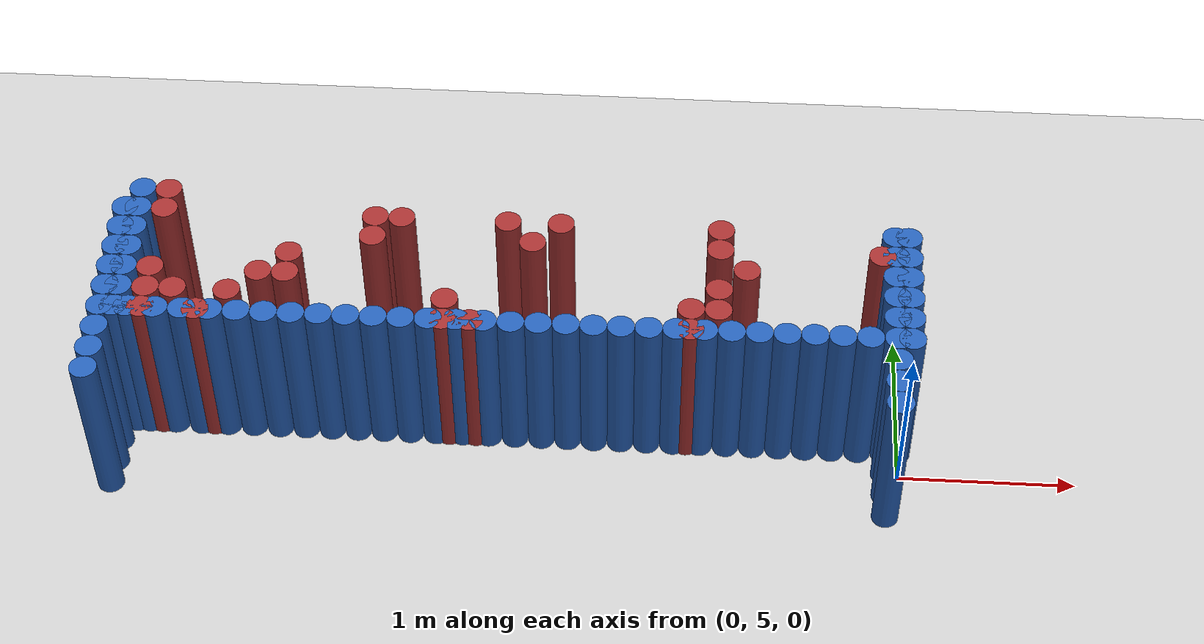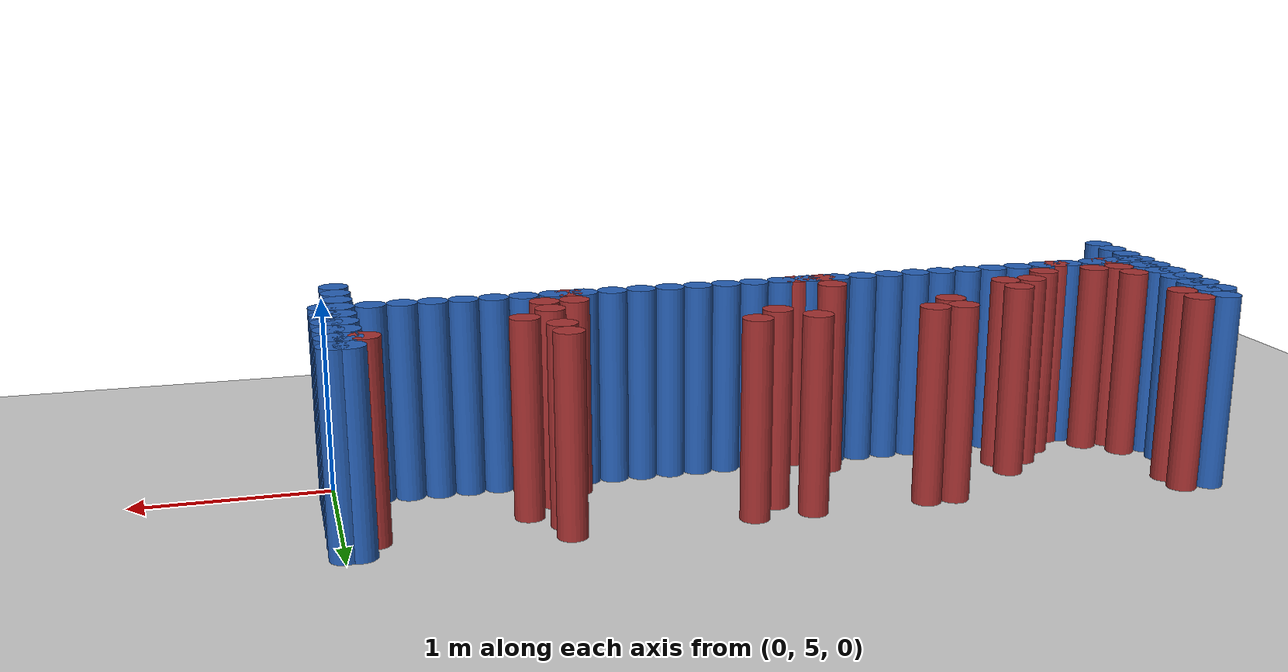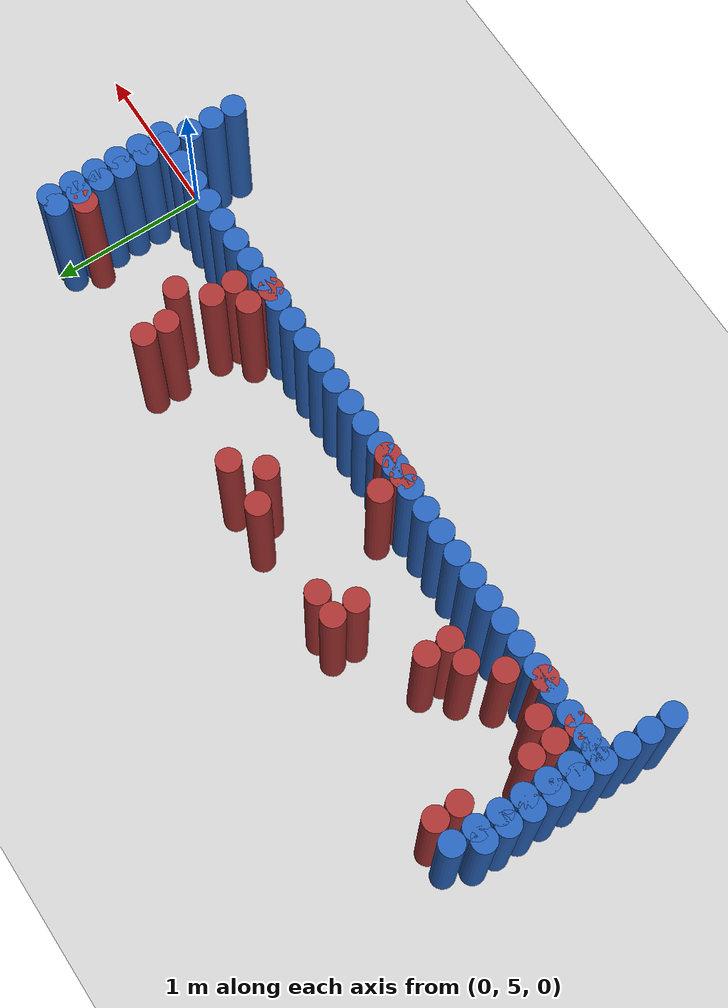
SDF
<sdf version="1.6">
 <world name="barn_world">
  <model name="ground_plane">
   <static>1</static>
   <link name="link">
    <collision name="collision">
     <geometry><plane><normal>0 0 1</normal><size>100 100</size></plane></geometry>
    </collision>
    <visual name="visual">
     <geometry><plane><normal>0 0 1</normal><size>100 100</size></plane></geometry>
     <material>
      <script><uri>file://media/materials/scripts/gazebo.material</uri><name>Gazebo/Grey</name></script>
     </material>
    </visual>
   </link>
  </model>
  <model name="unit_cylinder_90">
   <static>1</static>
   <pose>-0.0750 4.7250 0.5 0 0 0</pose>
   <link name="link">
    <collision name="collision">
     <geometry><cylinder><radius>0.075</radius><length>1</length></cylinder></geometry>
    </collision>
    <visual name="visual">
     <geometry><cylinder><radius>0.075</radius><length>1</length></cylinder></geometry>
     <material><ambient>0.152 0.379 0.72 1</ambient><diffuse>0.152 0.379 0.72 1</diffuse></material>
    </visual>
   </link>
  </model>
  <model name="unit_cylinder_91">
   <static>1</static>
   <pose>-4.4250 4.7250 0.5 0 0 0</pose>
   <link name="link">
    <collision name="collision">
     <geometry><cylinder><radius>0.075</radius><length>1</length></cylinder></geometry>
    </collision>
    <visual name="visual">
     <geometry><cylinder><radius>0.075</radius><length>1</length></cylinder></geometry>
     <material><ambient>0.152 0.379 0.72 1</ambient><diffuse>0.152 0.379 0.72 1</diffuse></material>
    </visual>
   </link>
  </model>
  <model name="unit_cylinder_92">
   <static>1</static>
   <pose>-0.0750 4.8750 0.5 0 0 0</pose>
   <link name="link">
    <collision name="collision">
     <geometry><cylinder><radius>0.075</radius><length>1</length></cylinder></geometry>
    </collision>
    <visual name="visual">
     <geometry><cylinder><radius>0.075</radius><length>1</length></cylinder></geometry>
     <material><ambient>0.152 0.379 0.72 1</ambient><diffuse>0.152 0.379 0.72 1</diffuse></material>
    </visual>
   </link>
  </model>
  <model name="unit_cylinder_93">
   <static>1</static>
   <pose>-4.4250 4.8750 0.5 0 0 0</pose>
   <link name="link">
    <collision name="collision">
     <geometry><cylinder><radius>0.075</radius><length>1</length></cylinder></geometry>
    </collision>
    <visual name="visual">
     <geometry><cylinder><radius>0.075</radius><length>1</length></cylinder></geometry>
     <material><ambient>0.152 0.379 0.72 1</ambient><diffuse>0.152 0.379 0.72 1</diffuse></material>
    </visual>
   </link>
  </model>
  <model name="unit_cylinder_94">
   <static>1</static>
   <pose>-0.0750 5.0250 0.5 0 0 0</pose>
   <link name="link">
    <collision name="collision">
     <geometry><cylinder><radius>0.075</radius><length>1</length></cylinder></geometry>
    </collision>
    <visual name="visual">
     <geometry><cylinder><radius>0.075</radius><length>1</length></cylinder></geometry>
     <material><ambient>0.152 0.379 0.72 1</ambient><diffuse>0.152 0.379 0.72 1</diffuse></material>
    </visual>
   </link>
  </model>
  <model name="unit_cylinder_95">
   <static>1</static>
   <pose>-4.4250 5.0250 0.5 0 0 0</pose>
   <link name="link">
    <collision name="collision">
     <geometry><cylinder><radius>0.075</radius><length>1</length></cylinder></geometry>
    </collision>
    <visual name="visual">
     <geometry><cylinder><radius>0.075</radius><length>1</length></cylinder></geometry>
     <material><ambient>0.152 0.379 0.72 1</ambient><diffuse>0.152 0.379 0.72 1</diffuse></material>
    </visual>
   </link>
  </model>
  <model name="unit_cylinder_96">
   <static>1</static>
   <pose>-0.0750 5.1750 0.5 0 0 0</pose>
   <link name="link">
    <collision name="collision">
     <geometry><cylinder><radius>0.075</radius><length>1</length></cylinder></geometry>
    </collision>
    <visual name="visual">
     <geometry><cylinder><radius>0.075</radius><length>1</length></cylinder></geometry>
     <material><ambient>0.152 0.379 0.72 1</ambient><diffuse>0.152 0.379 0.72 1</diffuse></material>
    </visual>
   </link>
  </model>
  <model name="unit_cylinder_97">
   <static>1</static>
   <pose>-0.2250 5.1750 0.5 0 0 0</pose>
   <link name="link">
    <collision name="collision">
     <geometry><cylinder><radius>0.075</radius><length>1</length></cylinder></geometry>
    </collision>
    <visual name="visual">
     <geometry><cylinder><radius>0.075</radius><length>1</length></cylinder></geometry>
     <material><ambient>0.152 0.379 0.72 1</ambient><diffuse>0.152 0.379 0.72 1</diffuse></material>
    </visual>
   </link>
  </model>
  <model name="unit_cylinder_98">
   <static>1</static>
   <pose>-0.3750 5.1750 0.5 0 0 0</pose>
   <link name="link">
    <collision name="collision">
     <geometry><cylinder><radius>0.075</radius><length>1</length></cylinder></geometry>
    </collision>
    <visual name="visual">
     <geometry><cylinder><radius>0.075</radius><length>1</length></cylinder></geometry>
     <material><ambient>0.152 0.379 0.72 1</ambient><diffuse>0.152 0.379 0.72 1</diffuse></material>
    </visual>
   </link>
  </model>
  <model name="unit_cylinder_99">
   <static>1</static>
   <pose>-0.5250 5.1750 0.5 0 0 0</pose>
   <link name="link">
    <collision name="collision">
     <geometry><cylinder><radius>0.075</radius><length>1</length></cylinder></geometry>
    </collision>
    <visual name="visual">
     <geometry><cylinder><radius>0.075</radius><length>1</length></cylinder></geometry>
     <material><ambient>0.152 0.379 0.72 1</ambient><diffuse>0.152 0.379 0.72 1</diffuse></material>
    </visual>
   </link>
  </model>
  <model name="unit_cylinder_100">
   <static>1</static>
   <pose>-0.6750 5.1750 0.5 0 0 0</pose>
   <link name="link">
    <collision name="collision">
     <geometry><cylinder><radius>0.075</radius><length>1</length></cylinder></geometry>
    </collision>
    <visual name="visual">
     <geometry><cylinder><radius>0.075</radius><length>1</length></cylinder></geometry>
     <material><ambient>0.152 0.379 0.72 1</ambient><diffuse>0.152 0.379 0.72 1</diffuse></material>
    </visual>
   </link>
  </model>
  <model name="unit_cylinder_101">
   <static>1</static>
   <pose>-0.8250 5.1750 0.5 0 0 0</pose>
   <link name="link">
    <collision name="collision">
     <geometry><cylinder><radius>0.075</radius><length>1</length></cylinder></geometry>
    </collision>
    <visual name="visual">
     <geometry><cylinder><radius>0.075</radius><length>1</length></cylinder></geometry>
     <material><ambient>0.152 0.379 0.72 1</ambient><diffuse>0.152 0.379 0.72 1</diffuse></material>
    </visual>
   </link>
  </model>
  <model name="unit_cylinder_102">
   <static>1</static>
   <pose>-0.9750 5.1750 0.5 0 0 0</pose>
   <link name="link">
    <collision name="collision">
     <geometry><cylinder><radius>0.075</radius><length>1</length></cylinder></geometry>
    </collision>
    <visual name="visual">
     <geometry><cylinder><radius>0.075</radius><length>1</length></cylinder></geometry>
     <material><ambient>0.152 0.379 0.72 1</ambient><diffuse>0.152 0.379 0.72 1</diffuse></material>
    </visual>
   </link>
  </model>
  <model name="unit_cylinder_103">
   <static>1</static>
   <pose>-1.1250 5.1750 0.5 0 0 0</pose>
   <link name="link">
    <collision name="collision">
     <geometry><cylinder><radius>0.075</radius><length>1</length></cylinder></geometry>
    </collision>
    <visual name="visual">
     <geometry><cylinder><radius>0.075</radius><length>1</length></cylinder></geometry>
     <material><ambient>0.152 0.379 0.72 1</ambient><diffuse>0.152 0.379 0.72 1</diffuse></material>
    </visual>
   </link>
  </model>
  <model name="unit_cylinder_104">
   <static>1</static>
   <pose>-1.2750 5.1750 0.5 0 0 0</pose>
   <link name="link">
    <collision name="collision">
     <geometry><cylinder><radius>0.075</radius><length>1</length></cylinder></geometry>
    </collision>
    <visual name="visual">
     <geometry><cylinder><radius>0.075</radius><length>1</length></cylinder></geometry>
     <material><ambient>0.152 0.379 0.72 1</ambient><diffuse>0.152 0.379 0.72 1</diffuse></material>
    </visual>
   </link>
  </model>
  <model name="unit_cylinder_105">
   <static>1</static>
   <pose>-1.4250 5.1750 0.5 0 0 0</pose>
   <link name="link">
    <collision name="collision">
     <geometry><cylinder><radius>0.075</radius><length>1</length></cylinder></geometry>
    </collision>
    <visual name="visual">
     <geometry><cylinder><radius>0.075</radius><length>1</length></cylinder></geometry>
     <material><ambient>0.152 0.379 0.72 1</ambient><diffuse>0.152 0.379 0.72 1</diffuse></material>
    </visual>
   </link>
  </model>
  <model name="unit_cylinder_106">
   <static>1</static>
   <pose>-1.5750 5.1750 0.5 0 0 0</pose>
   <link name="link">
    <collision name="collision">
     <geometry><cylinder><radius>0.075</radius><length>1</length></cylinder></geometry>
    </collision>
    <visual name="visual">
     <geometry><cylinder><radius>0.075</radius><length>1</length></cylinder></geometry>
     <material><ambient>0.152 0.379 0.72 1</ambient><diffuse>0.152 0.379 0.72 1</diffuse></material>
    </visual>
   </link>
  </model>
  <model name="unit_cylinder_107">
   <static>1</static>
   <pose>-1.7250 5.1750 0.5 0 0 0</pose>
   <link name="link">
    <collision name="collision">
     <geometry><cylinder><radius>0.075</radius><length>1</length></cylinder></geometry>
    </collision>
    <visual name="visual">
     <geometry><cylinder><radius>0.075</radius><length>1</length></cylinder></geometry>
     <material><ambient>0.152 0.379 0.72 1</ambient><diffuse>0.152 0.379 0.72 1</diffuse></material>
    </visual>
   </link>
  </model>
  <model name="unit_cylinder_108">
   <static>1</static>
   <pose>-1.8750 5.1750 0.5 0 0 0</pose>
   <link name="link">
    <collision name="collision">
     <geometry><cylinder><radius>0.075</radius><length>1</length></cylinder></geometry>
    </collision>
    <visual name="visual">
     <geometry><cylinder><radius>0.075</radius><length>1</length></cylinder></geometry>
     <material><ambient>0.152 0.379 0.72 1</ambient><diffuse>0.152 0.379 0.72 1</diffuse></material>
    </visual>
   </link>
  </model>
  <model name="unit_cylinder_109">
   <static>1</static>
   <pose>-2.0250 5.1750 0.5 0 0 0</pose>
   <link name="link">
    <collision name="collision">
     <geometry><cylinder><radius>0.075</radius><length>1</length></cylinder></geometry>
    </collision>
    <visual name="visual">
     <geometry><cylinder><radius>0.075</radius><length>1</length></cylinder></geometry>
     <material><ambient>0.152 0.379 0.72 1</ambient><diffuse>0.152 0.379 0.72 1</diffuse></material>
    </visual>
   </link>
  </model>
  <model name="unit_cylinder_110">
   <static>1</static>
   <pose>-2.1750 5.1750 0.5 0 0 0</pose>
   <link name="link">
    <collision name="collision">
     <geometry><cylinder><radius>0.075</radius><length>1</length></cylinder></geometry>
    </collision>
    <visual name="visual">
     <geometry><cylinder><radius>0.075</radius><length>1</length></cylinder></geometry>
     <material><ambient>0.152 0.379 0.72 1</ambient><diffuse>0.152 0.379 0.72 1</diffuse></material>
    </visual>
   </link>
  </model>
  <model name="unit_cylinder_111">
   <static>1</static>
   <pose>-2.3250 5.1750 0.5 0 0 0</pose>
   <link name="link">
    <collision name="collision">
     <geometry><cylinder><radius>0.075</radius><length>1</length></cylinder></geometry>
    </collision>
    <visual name="visual">
     <geometry><cylinder><radius>0.075</radius><length>1</length></cylinder></geometry>
     <material><ambient>0.152 0.379 0.72 1</ambient><diffuse>0.152 0.379 0.72 1</diffuse></material>
    </visual>
   </link>
  </model>
  <model name="unit_cylinder_112">
   <static>1</static>
   <pose>-2.4750 5.1750 0.5 0 0 0</pose>
   <link name="link">
    <collision name="collision">
     <geometry><cylinder><radius>0.075</radius><length>1</length></cylinder></geometry>
    </collision>
    <visual name="visual">
     <geometry><cylinder><radius>0.075</radius><length>1</length></cylinder></geometry>
     <material><ambient>0.152 0.379 0.72 1</ambient><diffuse>0.152 0.379 0.72 1</diffuse></material>
    </visual>
   </link>
  </model>
  <model name="unit_cylinder_113">
   <static>1</static>
   <pose>-2.6250 5.1750 0.5 0 0 0</pose>
   <link name="link">
    <collision name="collision">
     <geometry><cylinder><radius>0.075</radius><length>1</length></cylinder></geometry>
    </collision>
    <visual name="visual">
     <geometry><cylinder><radius>0.075</radius><length>1</length></cylinder></geometry>
     <material><ambient>0.152 0.379 0.72 1</ambient><diffuse>0.152 0.379 0.72 1</diffuse></material>
    </visual>
   </link>
  </model>
  <model name="unit_cylinder_114">
   <static>1</static>
   <pose>-2.7750 5.1750 0.5 0 0 0</pose>
   <link name="link">
    <collision name="collision">
     <geometry><cylinder><radius>0.075</radius><length>1</length></cylinder></geometry>
    </collision>
    <visual name="visual">
     <geometry><cylinder><radius>0.075</radius><length>1</length></cylinder></geometry>
     <material><ambient>0.152 0.379 0.72 1</ambient><diffuse>0.152 0.379 0.72 1</diffuse></material>
    </visual>
   </link>
  </model>
  <model name="unit_cylinder_115">
   <static>1</static>
   <pose>-2.9250 5.1750 0.5 0 0 0</pose>
   <link name="link">
    <collision name="collision">
     <geometry><cylinder><radius>0.075</radius><length>1</length></cylinder></geometry>
    </collision>
    <visual name="visual">
     <geometry><cylinder><radius>0.075</radius><length>1</length></cylinder></geometry>
     <material><ambient>0.152 0.379 0.72 1</ambient><diffuse>0.152 0.379 0.72 1</diffuse></material>
    </visual>
   </link>
  </model>
  <model name="unit_cylinder_116">
   <static>1</static>
   <pose>-3.0750 5.1750 0.5 0 0 0</pose>
   <link name="link">
    <collision name="collision">
     <geometry><cylinder><radius>0.075</radius><length>1</length></cylinder></geometry>
    </collision>
    <visual name="visual">
     <geometry><cylinder><radius>0.075</radius><length>1</length></cylinder></geometry>
     <material><ambient>0.152 0.379 0.72 1</ambient><diffuse>0.152 0.379 0.72 1</diffuse></material>
    </visual>
   </link>
  </model>
  <model name="unit_cylinder_117">
   <static>1</static>
   <pose>-3.2250 5.1750 0.5 0 0 0</pose>
   <link name="link">
    <collision name="collision">
     <geometry><cylinder><radius>0.075</radius><length>1</length></cylinder></geometry>
    </collision>
    <visual name="visual">
     <geometry><cylinder><radius>0.075</radius><length>1</length></cylinder></geometry>
     <material><ambient>0.152 0.379 0.72 1</ambient><diffuse>0.152 0.379 0.72 1</diffuse></material>
    </visual>
   </link>
  </model>
  <model name="unit_cylinder_118">
   <static>1</static>
   <pose>-3.3750 5.1750 0.5 0 0 0</pose>
   <link name="link">
    <collision name="collision">
     <geometry><cylinder><radius>0.075</radius><length>1</length></cylinder></geometry>
    </collision>
    <visual name="visual">
     <geometry><cylinder><radius>0.075</radius><length>1</length></cylinder></geometry>
     <material><ambient>0.152 0.379 0.72 1</ambient><diffuse>0.152 0.379 0.72 1</diffuse></material>
    </visual>
   </link>
  </model>
  <model name="unit_cylinder_119">
   <static>1</static>
   <pose>-3.5250 5.1750 0.5 0 0 0</pose>
   <link name="link">
    <collision name="collision">
     <geometry><cylinder><radius>0.075</radius><length>1</length></cylinder></geometry>
    </collision>
    <visual name="visual">
     <geometry><cylinder><radius>0.075</radius><length>1</length></cylinder></geometry>
     <material><ambient>0.152 0.379 0.72 1</ambient><diffuse>0.152 0.379 0.72 1</diffuse></material>
    </visual>
   </link>
  </model>
  <model name="unit_cylinder_120">
   <static>1</static>
   <pose>-3.6750 5.1750 0.5 0 0 0</pose>
   <link name="link">
    <collision name="collision">
     <geometry><cylinder><radius>0.075</radius><length>1</length></cylinder></geometry>
    </collision>
    <visual name="visual">
     <geometry><cylinder><radius>0.075</radius><length>1</length></cylinder></geometry>
     <material><ambient>0.152 0.379 0.72 1</ambient><diffuse>0.152 0.379 0.72 1</diffuse></material>
    </visual>
   </link>
  </model>
  <model name="unit_cylinder_121">
   <static>1</static>
   <pose>-3.8250 5.1750 0.5 0 0 0</pose>
   <link name="link">
    <collision name="collision">
     <geometry><cylinder><radius>0.075</radius><length>1</length></cylinder></geometry>
    </collision>
    <visual name="visual">
     <geometry><cylinder><radius>0.075</radius><length>1</length></cylinder></geometry>
     <material><ambient>0.152 0.379 0.72 1</ambient><diffuse>0.152 0.379 0.72 1</diffuse></material>
    </visual>
   </link>
  </model>
  <model name="unit_cylinder_122">
   <static>1</static>
   <pose>-3.9750 5.1750 0.5 0 0 0</pose>
   <link name="link">
    <collision name="collision">
     <geometry><cylinder><radius>0.075</radius><length>1</length></cylinder></geometry>
    </collision>
    <visual name="visual">
     <geometry><cylinder><radius>0.075</radius><length>1</length></cylinder></geometry>
     <material><ambient>0.152 0.379 0.72 1</ambient><diffuse>0.152 0.379 0.72 1</diffuse></material>
    </visual>
   </link>
  </model>
  <model name="unit_cylinder_123">
   <static>1</static>
   <pose>-4.1250 5.1750 0.5 0 0 0</pose>
   <link name="link">
    <collision name="collision">
     <geometry><cylinder><radius>0.075</radius><length>1</length></cylinder></geometry>
    </collision>
    <visual name="visual">
     <geometry><cylinder><radius>0.075</radius><length>1</length></cylinder></geometry>
     <material><ambient>0.152 0.379 0.72 1</ambient><diffuse>0.152 0.379 0.72 1</diffuse></material>
    </visual>
   </link>
  </model>
  <model name="unit_cylinder_124">
   <static>1</static>
   <pose>-4.2750 5.1750 0.5 0 0 0</pose>
   <link name="link">
    <collision name="collision">
     <geometry><cylinder><radius>0.075</radius><length>1</length></cylinder></geometry>
    </collision>
    <visual name="visual">
     <geometry><cylinder><radius>0.075</radius><length>1</length></cylinder></geometry>
     <material><ambient>0.152 0.379 0.72 1</ambient><diffuse>0.152 0.379 0.72 1</diffuse></material>
    </visual>
   </link>
  </model>
  <model name="unit_cylinder_125">
   <static>1</static>
   <pose>-4.4250 5.1750 0.5 0 0 0</pose>
   <link name="link">
    <collision name="collision">
     <geometry><cylinder><radius>0.075</radius><length>1</length></cylinder></geometry>
    </collision>
    <visual name="visual">
     <geometry><cylinder><radius>0.075</radius><length>1</length></cylinder></geometry>
     <material><ambient>0.152 0.379 0.72 1</ambient><diffuse>0.152 0.379 0.72 1</diffuse></material>
    </visual>
   </link>
  </model>
  <model name="unit_cylinder_126">
   <static>1</static>
   <pose>-4.3500 5.1750 0.5 0 0 0</pose>
   <link name="link">
    <collision name="collision">
     <geometry><cylinder><radius>0.075</radius><length>1</length></cylinder></geometry>
    </collision>
    <visual name="visual">
     <geometry><cylinder><radius>0.075</radius><length>1</length></cylinder></geometry>
     <material><ambient>0.152 0.379 0.72 1</ambient><diffuse>0.152 0.379 0.72 1</diffuse></material>
    </visual>
   </link>
  </model>
  <model name="unit_cylinder_127">
   <static>1</static>
   <pose>-4.3500 5.3250 0.5 0 0 0</pose>
   <link name="link">
    <collision name="collision">
     <geometry><cylinder><radius>0.075</radius><length>1</length></cylinder></geometry>
    </collision>
    <visual name="visual">
     <geometry><cylinder><radius>0.075</radius><length>1</length></cylinder></geometry>
     <material><ambient>0.152 0.379 0.72 1</ambient><diffuse>0.152 0.379 0.72 1</diffuse></material>
    </visual>
   </link>
  </model>
  <model name="unit_cylinder_128">
   <static>1</static>
   <pose>-4.3500 5.4750 0.5 0 0 0</pose>
   <link name="link">
    <collision name="collision">
     <geometry><cylinder><radius>0.075</radius><length>1</length></cylinder></geometry>
    </collision>
    <visual name="visual">
     <geometry><cylinder><radius>0.075</radius><length>1</length></cylinder></geometry>
     <material><ambient>0.152 0.379 0.72 1</ambient><diffuse>0.152 0.379 0.72 1</diffuse></material>
    </visual>
   </link>
  </model>
  <model name="unit_cylinder_129">
   <static>1</static>
   <pose>-4.3500 5.6250 0.5 0 0 0</pose>
   <link name="link">
    <collision name="collision">
     <geometry><cylinder><radius>0.075</radius><length>1</length></cylinder></geometry>
    </collision>
    <visual name="visual">
     <geometry><cylinder><radius>0.075</radius><length>1</length></cylinder></geometry>
     <material><ambient>0.152 0.379 0.72 1</ambient><diffuse>0.152 0.379 0.72 1</diffuse></material>
    </visual>
   </link>
  </model>
  <model name="unit_cylinder_130">
   <static>1</static>
   <pose>-4.3500 5.7750 0.5 0 0 0</pose>
   <link name="link">
    <collision name="collision">
     <geometry><cylinder><radius>0.075</radius><length>1</length></cylinder></geometry>
    </collision>
    <visual name="visual">
     <geometry><cylinder><radius>0.075</radius><length>1</length></cylinder></geometry>
     <material><ambient>0.152 0.379 0.72 1</ambient><diffuse>0.152 0.379 0.72 1</diffuse></material>
    </visual>
   </link>
  </model>
  <model name="unit_cylinder_131">
   <static>1</static>
   <pose>-4.3500 5.9250 0.5 0 0 0</pose>
   <link name="link">
    <collision name="collision">
     <geometry><cylinder><radius>0.075</radius><length>1</length></cylinder></geometry>
    </collision>
    <visual name="visual">
     <geometry><cylinder><radius>0.075</radius><length>1</length></cylinder></geometry>
     <material><ambient>0.152 0.379 0.72 1</ambient><diffuse>0.152 0.379 0.72 1</diffuse></material>
    </visual>
   </link>
  </model>
  <model name="unit_cylinder_132">
   <static>1</static>
   <pose>-4.3500 6.0750 0.5 0 0 0</pose>
   <link name="link">
    <collision name="collision">
     <geometry><cylinder><radius>0.075</radius><length>1</length></cylinder></geometry>
    </collision>
    <visual name="visual">
     <geometry><cylinder><radius>0.075</radius><length>1</length></cylinder></geometry>
     <material><ambient>0.152 0.379 0.72 1</ambient><diffuse>0.152 0.379 0.72 1</diffuse></material>
    </visual>
   </link>
  </model>
  <model name="unit_cylinder_156">
   <static>1</static>
   <pose>-4.2000 5.1750 0.5 0 0 0</pose>
   <link name="link">
    <collision name="collision">
     <geometry><cylinder><radius>0.075</radius><length>1</length></cylinder></geometry>
    </collision>
    <visual name="visual">
     <geometry><cylinder><radius>0.075</radius><length>1</length></cylinder></geometry>
     <material><ambient>0.648 0.192 0.192 1</ambient><diffuse>0.648 0.192 0.192 1</diffuse></material>
    </visual>
   </link>
  </model>
  <model name="unit_cylinder_157">
   <static>1</static>
   <pose>-4.2000 5.3250 0.5 0 0 0</pose>
   <link name="link">
    <collision name="collision">
     <geometry><cylinder><radius>0.075</radius><length>1</length></cylinder></geometry>
    </collision>
    <visual name="visual">
     <geometry><cylinder><radius>0.075</radius><length>1</length></cylinder></geometry>
     <material><ambient>0.648 0.192 0.192 1</ambient><diffuse>0.648 0.192 0.192 1</diffuse></material>
    </visual>
   </link>
  </model>
  <model name="unit_cylinder_158">
   <static>1</static>
   <pose>-4.2000 5.4750 0.5 0 0 0</pose>
   <link name="link">
    <collision name="collision">
     <geometry><cylinder><radius>0.075</radius><length>1</length></cylinder></geometry>
    </collision>
    <visual name="visual">
     <geometry><cylinder><radius>0.075</radius><length>1</length></cylinder></geometry>
     <material><ambient>0.648 0.192 0.192 1</ambient><diffuse>0.648 0.192 0.192 1</diffuse></material>
    </visual>
   </link>
  </model>
  <model name="unit_cylinder_159">
   <static>1</static>
   <pose>-4.2000 5.9250 0.5 0 0 0</pose>
   <link name="link">
    <collision name="collision">
     <geometry><cylinder><radius>0.075</radius><length>1</length></cylinder></geometry>
    </collision>
    <visual name="visual">
     <geometry><cylinder><radius>0.075</radius><length>1</length></cylinder></geometry>
     <material><ambient>0.648 0.192 0.192 1</ambient><diffuse>0.648 0.192 0.192 1</diffuse></material>
    </visual>
   </link>
  </model>
  <model name="unit_cylinder_160">
   <static>1</static>
   <pose>-4.2000 6.0750 0.5 0 0 0</pose>
   <link name="link">
    <collision name="collision">
     <geometry><cylinder><radius>0.075</radius><length>1</length></cylinder></geometry>
    </collision>
    <visual name="visual">
     <geometry><cylinder><radius>0.075</radius><length>1</length></cylinder></geometry>
     <material><ambient>0.648 0.192 0.192 1</ambient><diffuse>0.648 0.192 0.192 1</diffuse></material>
    </visual>
   </link>
  </model>
  <model name="unit_cylinder_176">
   <static>1</static>
   <pose>-4.0500 5.3250 0.5 0 0 0</pose>
   <link name="link">
    <collision name="collision">
     <geometry><cylinder><radius>0.075</radius><length>1</length></cylinder></geometry>
    </collision>
    <visual name="visual">
     <geometry><cylinder><radius>0.075</radius><length>1</length></cylinder></geometry>
     <material><ambient>0.648 0.192 0.192 1</ambient><diffuse>0.648 0.192 0.192 1</diffuse></material>
    </visual>
   </link>
  </model>
  <model name="unit_cylinder_183">
   <static>1</static>
   <pose>-3.9000 5.1750 0.5 0 0 0</pose>
   <link name="link">
    <collision name="collision">
     <geometry><cylinder><radius>0.075</radius><length>1</length></cylinder></geometry>
    </collision>
    <visual name="visual">
     <geometry><cylinder><radius>0.075</radius><length>1</length></cylinder></geometry>
     <material><ambient>0.648 0.192 0.192 1</ambient><diffuse>0.648 0.192 0.192 1</diffuse></material>
    </visual>
   </link>
  </model>
  <model name="unit_cylinder_186">
   <static>1</static>
   <pose>-3.7500 5.3250 0.5 0 0 0</pose>
   <link name="link">
    <collision name="collision">
     <geometry><cylinder><radius>0.075</radius><length>1</length></cylinder></geometry>
    </collision>
    <visual name="visual">
     <geometry><cylinder><radius>0.075</radius><length>1</length></cylinder></geometry>
     <material><ambient>0.648 0.192 0.192 1</ambient><diffuse>0.648 0.192 0.192 1</diffuse></material>
    </visual>
   </link>
  </model>
  <model name="unit_cylinder_187">
   <static>1</static>
   <pose>-3.6000 5.4750 0.5 0 0 0</pose>
   <link name="link">
    <collision name="collision">
     <geometry><cylinder><radius>0.075</radius><length>1</length></cylinder></geometry>
    </collision>
    <visual name="visual">
     <geometry><cylinder><radius>0.075</radius><length>1</length></cylinder></geometry>
     <material><ambient>0.648 0.192 0.192 1</ambient><diffuse>0.648 0.192 0.192 1</diffuse></material>
    </visual>
   </link>
  </model>
  <model name="unit_cylinder_188">
   <static>1</static>
   <pose>-3.4500 5.4750 0.5 0 0 0</pose>
   <link name="link">
    <collision name="collision">
     <geometry><cylinder><radius>0.075</radius><length>1</length></cylinder></geometry>
    </collision>
    <visual name="visual">
     <geometry><cylinder><radius>0.075</radius><length>1</length></cylinder></geometry>
     <material><ambient>0.648 0.192 0.192 1</ambient><diffuse>0.648 0.192 0.192 1</diffuse></material>
    </visual>
   </link>
  </model>
  <model name="unit_cylinder_189">
   <static>1</static>
   <pose>-3.4500 5.6250 0.5 0 0 0</pose>
   <link name="link">
    <collision name="collision">
     <geometry><cylinder><radius>0.075</radius><length>1</length></cylinder></geometry>
    </collision>
    <visual name="visual">
     <geometry><cylinder><radius>0.075</radius><length>1</length></cylinder></geometry>
     <material><ambient>0.648 0.192 0.192 1</ambient><diffuse>0.648 0.192 0.192 1</diffuse></material>
    </visual>
   </link>
  </model>
  <model name="unit_cylinder_191">
   <static>1</static>
   <pose>-3.0000 5.7750 0.5 0 0 0</pose>
   <link name="link">
    <collision name="collision">
     <geometry><cylinder><radius>0.075</radius><length>1</length></cylinder></geometry>
    </collision>
    <visual name="visual">
     <geometry><cylinder><radius>0.075</radius><length>1</length></cylinder></geometry>
     <material><ambient>0.648 0.192 0.192 1</ambient><diffuse>0.648 0.192 0.192 1</diffuse></material>
    </visual>
   </link>
  </model>
  <model name="unit_cylinder_192">
   <static>1</static>
   <pose>-3.0000 5.9250 0.5 0 0 0</pose>
   <link name="link">
    <collision name="collision">
     <geometry><cylinder><radius>0.075</radius><length>1</length></cylinder></geometry>
    </collision>
    <visual name="visual">
     <geometry><cylinder><radius>0.075</radius><length>1</length></cylinder></geometry>
     <material><ambient>0.648 0.192 0.192 1</ambient><diffuse>0.648 0.192 0.192 1</diffuse></material>
    </visual>
   </link>
  </model>
  <model name="unit_cylinder_196">
   <static>1</static>
   <pose>-2.8500 5.9250 0.5 0 0 0</pose>
   <link name="link">
    <collision name="collision">
     <geometry><cylinder><radius>0.075</radius><length>1</length></cylinder></geometry>
    </collision>
    <visual name="visual">
     <geometry><cylinder><radius>0.075</radius><length>1</length></cylinder></geometry>
     <material><ambient>0.648 0.192 0.192 1</ambient><diffuse>0.648 0.192 0.192 1</diffuse></material>
    </visual>
   </link>
  </model>
  <model name="unit_cylinder_207">
   <static>1</static>
   <pose>-2.5500 5.1750 0.5 0 0 0</pose>
   <link name="link">
    <collision name="collision">
     <geometry><cylinder><radius>0.075</radius><length>1</length></cylinder></geometry>
    </collision>
    <visual name="visual">
     <geometry><cylinder><radius>0.075</radius><length>1</length></cylinder></geometry>
     <material><ambient>0.648 0.192 0.192 1</ambient><diffuse>0.648 0.192 0.192 1</diffuse></material>
    </visual>
   </link>
  </model>
  <model name="unit_cylinder_208">
   <static>1</static>
   <pose>-2.5500 5.3250 0.5 0 0 0</pose>
   <link name="link">
    <collision name="collision">
     <geometry><cylinder><radius>0.075</radius><length>1</length></cylinder></geometry>
    </collision>
    <visual name="visual">
     <geometry><cylinder><radius>0.075</radius><length>1</length></cylinder></geometry>
     <material><ambient>0.648 0.192 0.192 1</ambient><diffuse>0.648 0.192 0.192 1</diffuse></material>
    </visual>
   </link>
  </model>
  <model name="unit_cylinder_212">
   <static>1</static>
   <pose>-2.4000 5.1750 0.5 0 0 0</pose>
   <link name="link">
    <collision name="collision">
     <geometry><cylinder><radius>0.075</radius><length>1</length></cylinder></geometry>
    </collision>
    <visual name="visual">
     <geometry><cylinder><radius>0.075</radius><length>1</length></cylinder></geometry>
     <material><ambient>0.648 0.192 0.192 1</ambient><diffuse>0.648 0.192 0.192 1</diffuse></material>
    </visual>
   </link>
  </model>
  <model name="unit_cylinder_215">
   <static>1</static>
   <pose>-2.2500 5.9250 0.5 0 0 0</pose>
   <link name="link">
    <collision name="collision">
     <geometry><cylinder><radius>0.075</radius><length>1</length></cylinder></geometry>
    </collision>
    <visual name="visual">
     <geometry><cylinder><radius>0.075</radius><length>1</length></cylinder></geometry>
     <material><ambient>0.648 0.192 0.192 1</ambient><diffuse>0.648 0.192 0.192 1</diffuse></material>
    </visual>
   </link>
  </model>
  <model name="unit_cylinder_216">
   <static>1</static>
   <pose>-2.1000 5.7750 0.5 0 0 0</pose>
   <link name="link">
    <collision name="collision">
     <geometry><cylinder><radius>0.075</radius><length>1</length></cylinder></geometry>
    </collision>
    <visual name="visual">
     <geometry><cylinder><radius>0.075</radius><length>1</length></cylinder></geometry>
     <material><ambient>0.648 0.192 0.192 1</ambient><diffuse>0.648 0.192 0.192 1</diffuse></material>
    </visual>
   </link>
  </model>
  <model name="unit_cylinder_218">
   <static>1</static>
   <pose>-1.9500 5.9250 0.5 0 0 0</pose>
   <link name="link">
    <collision name="collision">
     <geometry><cylinder><radius>0.075</radius><length>1</length></cylinder></geometry>
    </collision>
    <visual name="visual">
     <geometry><cylinder><radius>0.075</radius><length>1</length></cylinder></geometry>
     <material><ambient>0.648 0.192 0.192 1</ambient><diffuse>0.648 0.192 0.192 1</diffuse></material>
    </visual>
   </link>
  </model>
  <model name="unit_cylinder_222">
   <static>1</static>
   <pose>-1.2000 5.1750 0.5 0 0 0</pose>
   <link name="link">
    <collision name="collision">
     <geometry><cylinder><radius>0.075</radius><length>1</length></cylinder></geometry>
    </collision>
    <visual name="visual">
     <geometry><cylinder><radius>0.075</radius><length>1</length></cylinder></geometry>
     <material><ambient>0.648 0.192 0.192 1</ambient><diffuse>0.648 0.192 0.192 1</diffuse></material>
    </visual>
   </link>
  </model>
  <model name="unit_cylinder_223">
   <static>1</static>
   <pose>-1.2000 5.3250 0.5 0 0 0</pose>
   <link name="link">
    <collision name="collision">
     <geometry><cylinder><radius>0.075</radius><length>1</length></cylinder></geometry>
    </collision>
    <visual name="visual">
     <geometry><cylinder><radius>0.075</radius><length>1</length></cylinder></geometry>
     <material><ambient>0.648 0.192 0.192 1</ambient><diffuse>0.648 0.192 0.192 1</diffuse></material>
    </visual>
   </link>
  </model>
  <model name="unit_cylinder_224">
   <static>1</static>
   <pose>-1.0500 5.3250 0.5 0 0 0</pose>
   <link name="link">
    <collision name="collision">
     <geometry><cylinder><radius>0.075</radius><length>1</length></cylinder></geometry>
    </collision>
    <visual name="visual">
     <geometry><cylinder><radius>0.075</radius><length>1</length></cylinder></geometry>
     <material><ambient>0.648 0.192 0.192 1</ambient><diffuse>0.648 0.192 0.192 1</diffuse></material>
    </visual>
   </link>
  </model>
  <model name="unit_cylinder_225">
   <static>1</static>
   <pose>-1.0500 5.4750 0.5 0 0 0</pose>
   <link name="link">
    <collision name="collision">
     <geometry><cylinder><radius>0.075</radius><length>1</length></cylinder></geometry>
    </collision>
    <visual name="visual">
     <geometry><cylinder><radius>0.075</radius><length>1</length></cylinder></geometry>
     <material><ambient>0.648 0.192 0.192 1</ambient><diffuse>0.648 0.192 0.192 1</diffuse></material>
    </visual>
   </link>
  </model>
  <model name="unit_cylinder_226">
   <static>1</static>
   <pose>-1.0500 5.7750 0.5 0 0 0</pose>
   <link name="link">
    <collision name="collision">
     <geometry><cylinder><radius>0.075</radius><length>1</length></cylinder></geometry>
    </collision>
    <visual name="visual">
     <geometry><cylinder><radius>0.075</radius><length>1</length></cylinder></geometry>
     <material><ambient>0.648 0.192 0.192 1</ambient><diffuse>0.648 0.192 0.192 1</diffuse></material>
    </visual>
   </link>
  </model>
  <model name="unit_cylinder_227">
   <static>1</static>
   <pose>-1.0500 5.9250 0.5 0 0 0</pose>
   <link name="link">
    <collision name="collision">
     <geometry><cylinder><radius>0.075</radius><length>1</length></cylinder></geometry>
    </collision>
    <visual name="visual">
     <geometry><cylinder><radius>0.075</radius><length>1</length></cylinder></geometry>
     <material><ambient>0.648 0.192 0.192 1</ambient><diffuse>0.648 0.192 0.192 1</diffuse></material>
    </visual>
   </link>
  </model>
  <model name="unit_cylinder_228">
   <static>1</static>
   <pose>-0.9000 5.6250 0.5 0 0 0</pose>
   <link name="link">
    <collision name="collision">
     <geometry><cylinder><radius>0.075</radius><length>1</length></cylinder></geometry>
    </collision>
    <visual name="visual">
     <geometry><cylinder><radius>0.075</radius><length>1</length></cylinder></geometry>
     <material><ambient>0.648 0.192 0.192 1</ambient><diffuse>0.648 0.192 0.192 1</diffuse></material>
    </visual>
   </link>
  </model>
  <model name="unit_cylinder_236">
   <static>1</static>
   <pose>-0.1500 5.7750 0.5 0 0 0</pose>
   <link name="link">
    <collision name="collision">
     <geometry><cylinder><radius>0.075</radius><length>1</length></cylinder></geometry>
    </collision>
    <visual name="visual">
     <geometry><cylinder><radius>0.075</radius><length>1</length></cylinder></geometry>
     <material><ambient>0.648 0.192 0.192 1</ambient><diffuse>0.648 0.192 0.192 1</diffuse></material>
    </visual>
   </link>
  </model>
  <model name="unit_cylinder_239">
   <static>1</static>
   <pose>0.0000 5.1750 0.5 0 0 0</pose>
   <link name="link">
    <collision name="collision">
     <geometry><cylinder><radius>0.075</radius><length>1</length></cylinder></geometry>
    </collision>
    <visual name="visual">
     <geometry><cylinder><radius>0.075</radius><length>1</length></cylinder></geometry>
     <material><ambient>0.152 0.379 0.72 1</ambient><diffuse>0.152 0.379 0.72 1</diffuse></material>
    </visual>
   </link>
  </model>
  <model name="unit_cylinder_240">
   <static>1</static>
   <pose>0.0000 5.3250 0.5 0 0 0</pose>
   <link name="link">
    <collision name="collision">
     <geometry><cylinder><radius>0.075</radius><length>1</length></cylinder></geometry>
    </collision>
    <visual name="visual">
     <geometry><cylinder><radius>0.075</radius><length>1</length></cylinder></geometry>
     <material><ambient>0.152 0.379 0.72 1</ambient><diffuse>0.152 0.379 0.72 1</diffuse></material>
    </visual>
   </link>
  </model>
  <model name="unit_cylinder_241">
   <static>1</static>
   <pose>0.0000 5.4750 0.5 0 0 0</pose>
   <link name="link">
    <collision name="collision">
     <geometry><cylinder><radius>0.075</radius><length>1</length></cylinder></geometry>
    </collision>
    <visual name="visual">
     <geometry><cylinder><radius>0.075</radius><length>1</length></cylinder></geometry>
     <material><ambient>0.152 0.379 0.72 1</ambient><diffuse>0.152 0.379 0.72 1</diffuse></material>
    </visual>
   </link>
  </model>
  <model name="unit_cylinder_242">
   <static>1</static>
   <pose>0.0000 5.6250 0.5 0 0 0</pose>
   <link name="link">
    <collision name="collision">
     <geometry><cylinder><radius>0.075</radius><length>1</length></cylinder></geometry>
    </collision>
    <visual name="visual">
     <geometry><cylinder><radius>0.075</radius><length>1</length></cylinder></geometry>
     <material><ambient>0.152 0.379 0.72 1</ambient><diffuse>0.152 0.379 0.72 1</diffuse></material>
    </visual>
   </link>
  </model>
  <model name="unit_cylinder_243">
   <static>1</static>
   <pose>0.0000 5.7750 0.5 0 0 0</pose>
   <link name="link">
    <collision name="collision">
     <geometry><cylinder><radius>0.075</radius><length>1</length></cylinder></geometry>
    </collision>
    <visual name="visual">
     <geometry><cylinder><radius>0.075</radius><length>1</length></cylinder></geometry>
     <material><ambient>0.152 0.379 0.72 1</ambient><diffuse>0.152 0.379 0.72 1</diffuse></material>
    </visual>
   </link>
  </model>
  <model name="unit_cylinder_244">
   <static>1</static>
   <pose>0.0000 5.9250 0.5 0 0 0</pose>
   <link name="link">
    <collision name="collision">
     <geometry><cylinder><radius>0.075</radius><length>1</length></cylinder></geometry>
    </collision>
    <visual name="visual">
     <geometry><cylinder><radius>0.075</radius><length>1</length></cylinder></geometry>
     <material><ambient>0.152 0.379 0.72 1</ambient><diffuse>0.152 0.379 0.72 1</diffuse></material>
    </visual>
   </link>
  </model>
  <model name="unit_cylinder_299">
   <static>1</static>
   <pose>-0.0750 5.1750 0.5 0 0 0</pose>
   <link name="link">
    <collision name="collision">
     <geometry><cylinder><radius>0.075</radius><length>1</length></cylinder></geometry>
    </collision>
    <visual name="visual">
     <geometry><cylinder><radius>0.075</radius><length>1</length></cylinder></geometry>
     <material><ambient>0.152 0.379 0.72 1</ambient><diffuse>0.152 0.379 0.72 1</diffuse></material>
    </visual>
   </link>
  </model>
  <model name="unit_cylinder_300">
   <static>1</static>
   <pose>-4.4250 5.1750 0.5 0 0 0</pose>
   <link name="link">
    <collision name="collision">
     <geometry><cylinder><radius>0.075</radius><length>1</length></cylinder></geometry>
    </collision>
    <visual name="visual">
     <geometry><cylinder><radius>0.075</radius><length>1</length></cylinder></geometry>
     <material><ambient>0.152 0.379 0.72 1</ambient><diffuse>0.152 0.379 0.72 1</diffuse></material>
    </visual>
   </link>
  </model>
  <model name="unit_cylinder_301">
   <static>1</static>
   <pose>-0.0750 5.3250 0.5 0 0 0</pose>
   <link name="link">
    <collision name="collision">
     <geometry><cylinder><radius>0.075</radius><length>1</length></cylinder></geometry>
    </collision>
    <visual name="visual">
     <geometry><cylinder><radius>0.075</radius><length>1</length></cylinder></geometry>
     <material><ambient>0.152 0.379 0.72 1</ambient><diffuse>0.152 0.379 0.72 1</diffuse></material>
    </visual>
   </link>
  </model>
  <model name="unit_cylinder_302">
   <static>1</static>
   <pose>-4.4250 5.3250 0.5 0 0 0</pose>
   <link name="link">
    <collision name="collision">
     <geometry><cylinder><radius>0.075</radius><length>1</length></cylinder></geometry>
    </collision>
    <visual name="visual">
     <geometry><cylinder><radius>0.075</radius><length>1</length></cylinder></geometry>
     <material><ambient>0.152 0.379 0.72 1</ambient><diffuse>0.152 0.379 0.72 1</diffuse></material>
    </visual>
   </link>
  </model>
  <model name="unit_cylinder_303">
   <static>1</static>
   <pose>-0.0750 5.4750 0.5 0 0 0</pose>
   <link name="link">
    <collision name="collision">
     <geometry><cylinder><radius>0.075</radius><length>1</length></cylinder></geometry>
    </collision>
    <visual name="visual">
     <geometry><cylinder><radius>0.075</radius><length>1</length></cylinder></geometry>
     <material><ambient>0.152 0.379 0.72 1</ambient><diffuse>0.152 0.379 0.72 1</diffuse></material>
    </visual>
   </link>
  </model>
  <model name="unit_cylinder_304">
   <static>1</static>
   <pose>-4.4250 5.4750 0.5 0 0 0</pose>
   <link name="link">
    <collision name="collision">
     <geometry><cylinder><radius>0.075</radius><length>1</length></cylinder></geometry>
    </collision>
    <visual name="visual">
     <geometry><cylinder><radius>0.075</radius><length>1</length></cylinder></geometry>
     <material><ambient>0.152 0.379 0.72 1</ambient><diffuse>0.152 0.379 0.72 1</diffuse></material>
    </visual>
   </link>
  </model>
  <model name="unit_cylinder_305">
   <static>1</static>
   <pose>-0.0750 5.6250 0.5 0 0 0</pose>
   <link name="link">
    <collision name="collision">
     <geometry><cylinder><radius>0.075</radius><length>1</length></cylinder></geometry>
    </collision>
    <visual name="visual">
     <geometry><cylinder><radius>0.075</radius><length>1</length></cylinder></geometry>
     <material><ambient>0.152 0.379 0.72 1</ambient><diffuse>0.152 0.379 0.72 1</diffuse></material>
    </visual>
   </link>
  </model>
  <model name="unit_cylinder_306">
   <static>1</static>
   <pose>-4.4250 5.6250 0.5 0 0 0</pose>
   <link name="link">
    <collision name="collision">
     <geometry><cylinder><radius>0.075</radius><length>1</length></cylinder></geometry>
    </collision>
    <visual name="visual">
     <geometry><cylinder><radius>0.075</radius><length>1</length></cylinder></geometry>
     <material><ambient>0.152 0.379 0.72 1</ambient><diffuse>0.152 0.379 0.72 1</diffuse></material>
    </visual>
   </link>
  </model>
  <model name="unit_cylinder_307">
   <static>1</static>
   <pose>-0.0750 5.7750 0.5 0 0 0</pose>
   <link name="link">
    <collision name="collision">
     <geometry><cylinder><radius>0.075</radius><length>1</length></cylinder></geometry>
    </collision>
    <visual name="visual">
     <geometry><cylinder><radius>0.075</radius><length>1</length></cylinder></geometry>
     <material><ambient>0.152 0.379 0.72 1</ambient><diffuse>0.152 0.379 0.72 1</diffuse></material>
    </visual>
   </link>
  </model>
  <model name="unit_cylinder_308">
   <static>1</static>
   <pose>-4.4250 5.7750 0.5 0 0 0</pose>
   <link name="link">
    <collision name="collision">
     <geometry><cylinder><radius>0.075</radius><length>1</length></cylinder></geometry>
    </collision>
    <visual name="visual">
     <geometry><cylinder><radius>0.075</radius><length>1</length></cylinder></geometry>
     <material><ambient>0.152 0.379 0.72 1</ambient><diffuse>0.152 0.379 0.72 1</diffuse></material>
    </visual>
   </link>
  </model>
  <model name="unit_cylinder_309">
   <static>1</static>
   <pose>-0.0750 5.9250 0.5 0 0 0</pose>
   <link name="link">
    <collision name="collision">
     <geometry><cylinder><radius>0.075</radius><length>1</length></cylinder></geometry>
    </collision>
    <visual name="visual">
     <geometry><cylinder><radius>0.075</radius><length>1</length></cylinder></geometry>
     <material><ambient>0.152 0.379 0.72 1</ambient><diffuse>0.152 0.379 0.72 1</diffuse></material>
    </visual>
   </link>
  </model>
  <model name="unit_cylinder_310">
   <static>1</static>
   <pose>-4.4250 5.9250 0.5 0 0 0</pose>
   <link name="link">
    <collision name="collision">
     <geometry><cylinder><radius>0.075</radius><length>1</length></cylinder></geometry>
    </collision>
    <visual name="visual">
     <geometry><cylinder><radius>0.075</radius><length>1</length></cylinder></geometry>
     <material><ambient>0.152 0.379 0.72 1</ambient><diffuse>0.152 0.379 0.72 1</diffuse></material>
    </visual>
   </link>
  </model>
 </world>
</sdf>
